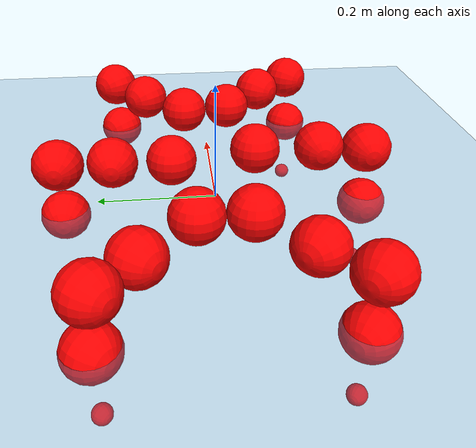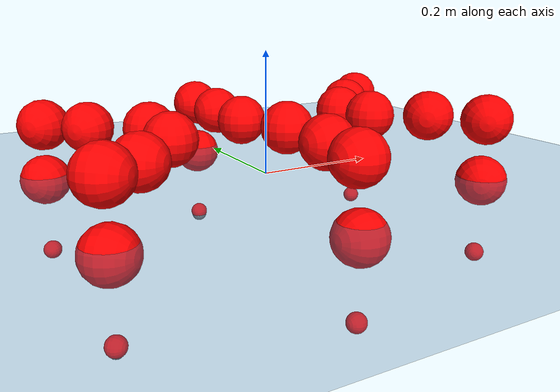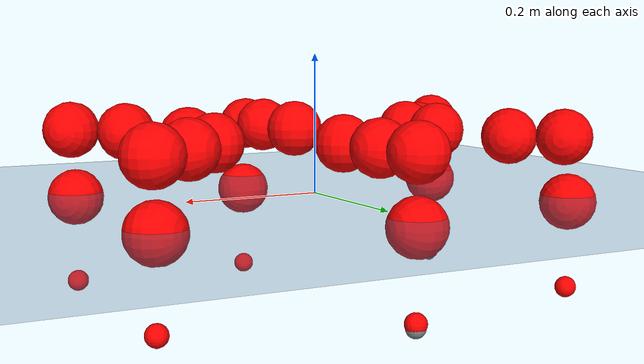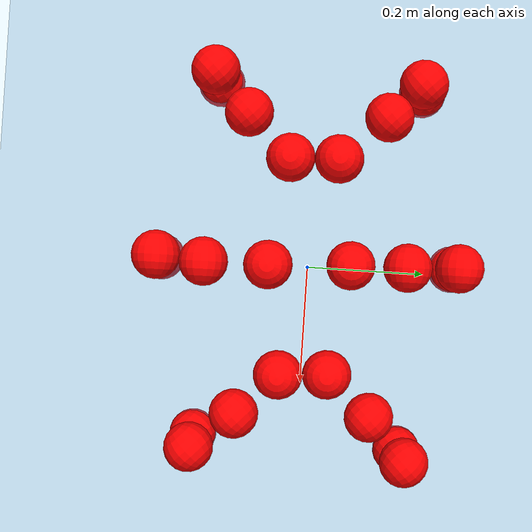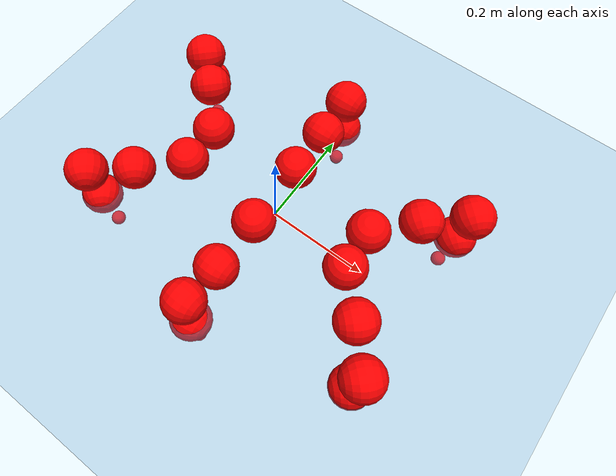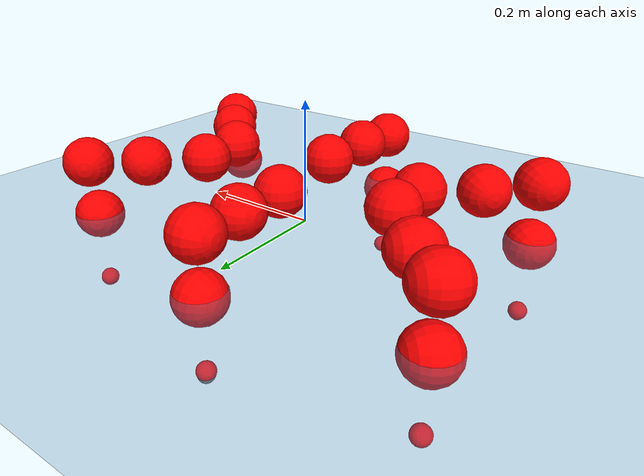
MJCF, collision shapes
<mujoco model="Golem">
  <compiler angle="radian" assetdir="assets" balanceinertia="true" inertiafromgeom="false"/>

  <option timestep="0.005" density="1.2" viscosity="2e-05"/>

  <size nkey="1"/>

  <visual>
    <quality shadowsize="8192"/>
    <map shadowclip="0.5"/>
  </visual>

  <default>
    <default class="/">
      <joint armature="0.01" damping="0.01" frictionloss="0.01"/>
      <geom contype="0" conaffinity="0" group="1" solref="-1000 -80"/>
      <site size="0.01 0.005 0.005" group="5"/>
      <general forcelimited="true" biastype="affine" gainprm="25" biasprm="0 -25 -0.5"/>
      <default class="visual">
        <geom type="mesh" group="2"/>
      </default>
      <default class="collision">
        <geom group="3"/>
      </default>
      <default class="foot">
        <geom size="0.01 0 0" condim="6" group="4" priority="1" solimp="0.015 1 0.01"/>
      </default>
      <default class="reward_collision_sphere">
        <geom group="5" rgba="1 0 0 1"/>
      </default>
    </default>
  </default>

  <asset>
    <texture type="skybox" colorspace="auto" name="//unnamed_texture_0" builtin="gradient" rgb1="0.95 0.95 0.95" rgb2="0.95 0.95 0.95" width="100" height="600"/>
    <texture type="2d" colorspace="auto" name="texplane" builtin="checker" rgb1="0.345 0.575 0.748" rgb2="0.345 0.575 0.748" markrgb="1 1 1" width="512" height="512"/>
    <material name="MatPlane" class="/" texture="texplane" texuniform="true" texrepeat="2 2" specular="0.9"/>
    <mesh name="body" class="/" file="body.stl" scale="0.001 0.001 0.001"/>
    <mesh name="coxa" class="/" file="coxa.stl" scale="0.001 0.001 0.001"/>
    <mesh name="femur" class="/" file="femur.stl" scale="0.001 0.001 0.001"/>
    <mesh name="tibia" class="/" file="tibia.stl" scale="0.001 0.001 0.001"/>
    <mesh name="tarsus" class="/" file="tarsus.stl" scale="0.001 0.001 0.001"/>
  </asset>

  <worldbody>
    <geom name="floor" class="/" size="100 100 0.125" type="plane" group="0" material="MatPlane"/>
    <light name="toplight_shadow" class="/" pos="0 0 5" dir="0.0990148 0.0990148 -0.990148" type="directional" ambient="0.04 0.04 0.04" diffuse="0.55 0.55 0.55" specular="0.12 0.12 0.12"/>
    <light name="toplight_fill" class="/" pos="0 0 5" dir="0.0990148 0.0990148 -0.990148" type="directional" castshadow="false" ambient="0.04 0.04 0.04" diffuse="0.3 0.3 0.3" specular="0.08 0.08 0.08"/>
    <body name="trunk" pos="0.00157543 0.00203495 0.00840957" quat="1 9.46632e-05 -0.000421488 -0.000398969">
      <inertial pos="-0.00189989 -0.000707619 -0.00776213" quat="0.99975 -0.00402896 0.0163099 -0.0147269" mass="3.7848" diaginertia="0.0241315 0.0026615 0.0185075"/>
      <joint name="//unnamed_joint_0" type="free"/>
      <geom name="//unnamed_geom_1" class="/" pos="0 0 0.0721593" quat="1 0 0 0" type="mesh" rgba="0.9 0.9 0.9 1" mesh="body"/>
      <site name="imu" class="/" pos="0.161165 -0.0100724 0.115458" size="0.0102038"/>
      <camera name="track" class="/" pos="0 -1.54473 0" quat="0.707107 0.707107 0 0" mode="trackcom"/>
      <camera name="ego_camera" class="/" pos="0.150966 0 0.112749" quat="-0.5 -0.5 0.5 0.5"/>
      <body name="coxa_RR" pos="-0.205041 -0.0655333 0.0769396" quat="0.382086 0.00012888 -0.000346779 -0.924127">
        <inertial pos="-0.000522904 0.00815517 0.00194949" quat="0.99998 -0.000645422 0.00555425 0.00306708" mass="0.238755" diaginertia="0.024907 0.00282694 0.0204536"/>
        <joint name="coxa_joint_RR" class="/" pos="0 0 0" axis="0.0301288 -0.0390871 -0.998781" range="-3.13714 3.21688" armature="0.0115501" damping="0.022209" frictionloss="0.0111762"/>
        <geom name="//unnamed_geom_2" class="/" type="mesh" rgba="0.2 0.2 0.2 1" mesh="coxa"/>
        <geom name="//unnamed_geom_3" class="reward_collision_sphere" size="0.040815" pos="-0.0348383 0 0"/>
        <body name="femur_RR" pos="0.0676223 0.00153205 -0.00708072" quat="0.500418 -0.499709 0.500104 0.499768">
          <inertial pos="-0.0012184 -0.00261234 0.00243118" quat="0.999993 -0.00232693 0.00266969 0.00122778" mass="0.203667" diaginertia="0.0204707 0.00271608 0.0178891"/>
          <joint name="femur_joint_RR" class="/" pos="0 0 0" axis="0.000647946 0.00251546 -0.999997" stiffness="0.00749428" range="-3.12341 3.28423" armature="0.0121337" damping="0.0271236" frictionloss="0.00800669"/>
          <geom name="//unnamed_geom_4" class="/" type="mesh" rgba="0.9 0.9 0.9 1" mesh="femur"/>
          <geom name="//unnamed_geom_5" class="reward_collision_sphere" size="0.040815"/>
          <body name="tibia_RR" pos="-0.00709215 -0.0875333 -0.00397837" quat="0.000289927 0.999999 -9.82615e-06 -0.00100577">
            <inertial pos="0.00632966 0.00328269 -0.000148502" quat="0.999706 0.0232289 0.00215529 -0.00661295" mass="0.212012" diaginertia="0.0220593 0.00262894 0.0174689"/>
            <joint name="tibia_joint_RR" class="/" pos="0 0 0" axis="-0.0100919 -0.00449141 0.999939" range="-2.98065 3.15514" armature="0.0123534" damping="0.0229948" frictionloss="0.0112292"/>
            <geom name="//unnamed_geom_6" class="/" type="mesh" rgba="0.2 0.2 0.2 1" mesh="tibia"/>
            <geom name="//unnamed_geom_7" class="reward_collision_sphere" size="0.040815"/>
            <body name="tarsus_RR" pos="0.10174 -0.00181354 -0.00063898" quat="1 -0.000266383 7.54924e-05 0.000190018">
              <inertial pos="0.0734164 -0.00697322 0.00442908" quat="0.500746 0.501894 0.498744 0.498609" mass="0.219711" diaginertia="0.0211314 0.00272713 0.0184976"/>
              <joint name="tarsus_joint_RR" class="/" pos="0 0 0" axis="0.000913405 0.0121572 0.999926" stiffness="0.042342" range="-3.09872 3.12606" armature="0.00759316" damping="0.0160072" frictionloss="0.00753087"/>
              <geom name="//unnamed_geom_8" class="/" type="mesh" rgba="0.9 0.9 0.9 1" mesh="tarsus"/>
              <geom name="foot_1" class="foot" size="0.0117014" pos="0.130063 0 0" quat="0 -0.707107 0 0.707107"/>
              <geom name="//unnamed_geom_10" class="reward_collision_sphere" size="0.040815"/>
              <geom name="//unnamed_geom_11" class="reward_collision_sphere" size="0.0153056" pos="0.124837 0 0"/>
              <site name="foot_1" class="foot" pos="0.130063 0 0" quat="0 -0.707107 0 0.707107" size="0.0102038"/>
            </body>
          </body>
        </body>
      </body>
      <body name="coxa_RM" pos="-0.00111581 -0.101812 0.0804489" quat="0.709901 -0.000144704 -0.00199667 -0.704298">
        <inertial pos="0.00651469 -0.00022769 0.00135606" quat="0.999959 0.00573835 0.00541688 0.00444021" mass="0.224131" diaginertia="0.0232941 0.00292841 0.0182196"/>
        <joint name="coxa_joint_RM" class="/" pos="0 0 0" axis="-0.000928556 -0.00120003 -0.999999" stiffness="0.00557002" range="-2.95835 3.12767" armature="0.010068" damping="0" frictionloss="0.00987805"/>
        <geom name="//unnamed_geom_12" class="/" type="mesh" rgba="0.2 0.2 0.2 1" mesh="coxa"/>
        <geom name="//unnamed_geom_13" class="reward_collision_sphere" size="0.040815" pos="-0.0348383 0 0"/>
        <body name="femur_RM" pos="0.0718 0.000319279 -0.00180534" quat="0.497683 -0.499503 0.502442 0.500361">
          <inertial pos="-0.00163173 0.000864689 -0.000851444" quat="0.999456 0.000685372 0.00278514 0.0328446" mass="0.196713" diaginertia="0.0198252 0.00272576 0.0165449"/>
          <joint name="femur_joint_RM" class="/" pos="0 0 0" axis="0.00314814 -0.00998201 -0.999945" stiffness="0.040879" range="-3.17093 3.1248" armature="0.0110971" damping="0.021017" frictionloss="0.0106215"/>
          <geom name="//unnamed_geom_14" class="/" type="mesh" rgba="0.9 0.9 0.9 1" mesh="femur"/>
          <geom name="//unnamed_geom_15" class="reward_collision_sphere" size="0.040815"/>
          <body name="tibia_RM" pos="0.00343986 -0.0793206 -0.00676606" quat="-0.000552046 1 -0.000742506 -7.90583e-05">
            <inertial pos="-0.000343119 -0.0097437 0.00210984" quat="0.999985 -0.00187218 0.00370265 -0.00352228" mass="0.19218" diaginertia="0.019366 0.00247467 0.0158168"/>
            <joint name="tibia_joint_RM" class="/" pos="0 0 0" axis="-0.000846642 0.0146926 0.999892" range="-3.22286 3.33798" armature="0.00894418" damping="0.0434618" frictionloss="0.0112215"/>
            <geom name="//unnamed_geom_16" class="/" type="mesh" rgba="0.2 0.2 0.2 1" mesh="tibia"/>
            <geom name="//unnamed_geom_17" class="reward_collision_sphere" size="0.040815"/>
            <body name="tarsus_RM" pos="0.10795 0.00716013 -0.00237049" quat="0.999997 4.14982e-05 -0.000213013 0.00226389">
              <inertial pos="0.068831 -0.00859584 -0.000328955" quat="0.501011 0.50092 0.500408 0.497653" mass="0.249721" diaginertia="0.0220832 0.00294411 0.0196796"/>
              <joint name="tarsus_joint_RM" class="/" pos="0 0 0" axis="0.0111568 0.00698921 0.999913" range="-3.17004 3.11262" armature="0.0087009" damping="0" frictionloss="0.00988642"/>
              <geom name="//unnamed_geom_18" class="/" type="mesh" rgba="0.9 0.9 0.9 1" mesh="tarsus"/>
              <geom name="foot_2" class="foot" size="0.00994667" pos="0.130063 0 0" quat="0 -0.707107 0 0.707107"/>
              <geom name="//unnamed_geom_20" class="reward_collision_sphere" size="0.040815"/>
              <geom name="//unnamed_geom_21" class="reward_collision_sphere" size="0.0153056" pos="0.124837 0 0"/>
              <site name="foot_2" class="foot" pos="0.130063 0 0" quat="0 -0.707107 0 0.707107" size="0.0102038"/>
            </body>
          </body>
        </body>
      </body>
      <body name="coxa_RF" pos="0.203496 -0.0637839 0.0782895" quat="0.924357 -0.000166205 0.00118329 -0.381527">
        <inertial pos="0.00706444 0.00099343 -0.00568261" quat="0.999906 -0.00701753 0.00260355 -0.0115178" mass="0.186425" diaginertia="0.0193334 0.0027097 0.0167359"/>
        <joint name="coxa_joint_RF" class="/" pos="0 0 0" axis="-0.0139303 -0.00481838 -0.999891" stiffness="0.0029481" range="-3.07953 3.1429" armature="0.0132071" damping="0" frictionloss="0.00849261"/>
        <geom name="//unnamed_geom_22" class="/" type="mesh" rgba="0.2 0.2 0.2 1" mesh="coxa"/>
        <geom name="//unnamed_geom_23" class="reward_collision_sphere" size="0.040815" pos="-0.0348383 0 0"/>
        <body name="femur_RF" pos="0.0610969 -0.000835129 0.00411956" quat="0.499289 -0.502797 0.499515 0.498387">
          <inertial pos="-0.00166297 0.00148686 0.00173864" quat="0.999956 0.00890019 -0.00215277 0.00206401" mass="0.255707" diaginertia="0.0212656 0.00306849 0.0210903"/>
          <joint name="femur_joint_RF" class="/" pos="0 0 0" axis="0.00872894 0.00111093 -0.999961" stiffness="0.0437452" range="-3.15618 3.29513" armature="0.0147309" damping="0.0176213" frictionloss="0.0148293"/>
          <geom name="//unnamed_geom_24" class="/" type="mesh" rgba="0.9 0.9 0.9 1" mesh="femur"/>
          <geom name="//unnamed_geom_25" class="reward_collision_sphere" size="0.040815"/>
          <body name="tibia_RF" pos="0.000622785 -0.0916544 -0.00850743" quat="-0.00029125 1 0.000137716 -0.000266633">
            <inertial pos="0.00728668 -0.000741505 0.000519439" quat="0.99995 0.00971414 0.00163228 -0.00172096" mass="0.227506" diaginertia="0.0235116 0.00287745 0.0189991"/>
            <joint name="tibia_joint_RF" class="/" pos="0 0 0" axis="-0.00750573 0.00901087 0.999931" stiffness="0.00880242" range="-3.20813 3.17299" armature="0.0106376" damping="0.0396734" frictionloss="0.00871449"/>
            <geom name="//unnamed_geom_26" class="/" type="mesh" rgba="0.2 0.2 0.2 1" mesh="tibia"/>
            <geom name="//unnamed_geom_27" class="reward_collision_sphere" size="0.040815"/>
            <body name="tarsus_RF" pos="0.0992811 -0.00104734 0.00709248" quat="0.999998 0.000498113 -0.00213605 -0.00027998">
              <inertial pos="0.0762898 0.00289911 -0.00194889" quat="0.477838 0.508231 0.535154 0.476426" mass="0.220952" diaginertia="0.0217859 0.00266837 0.0206763"/>
              <joint name="tarsus_joint_RF" class="/" pos="0 0 0" axis="-0.0125223 -0.000536492 0.999921" stiffness="0.00617839" range="-3.15414 3.1364" armature="0.0142186" damping="0.00889471" frictionloss="0.0134326"/>
              <geom name="//unnamed_geom_28" class="/" type="mesh" rgba="0.9 0.9 0.9 1" mesh="tarsus"/>
              <geom name="foot_3" class="foot" size="0.0101517" pos="0.130063 0 0" quat="0 -0.707107 0 0.707107"/>
              <geom name="//unnamed_geom_30" class="reward_collision_sphere" size="0.040815"/>
              <geom name="//unnamed_geom_31" class="reward_collision_sphere" size="0.0153056" pos="0.124837 0 0"/>
              <site name="foot_3" class="foot" pos="0.130063 0 0" quat="0 -0.707107 0 0.707107" size="0.0102038"/>
            </body>
          </body>
        </body>
      </body>
      <body name="coxa_LR" pos="-0.2075 0.0642127 0.0784417" quat="0.38248 -0.000198345 -8.56614e-05 0.923964">
        <inertial pos="-0.000597543 0.00116819 -0.00160284" quat="0.999172 0.0360145 -0.0163381 0.00960167" mass="0.203638" diaginertia="0.0212132 0.00245134 0.0180648"/>
        <joint name="coxa_joint_LR" class="/" pos="0 0 0" axis="-0.00429561 0.00452264 -0.999981" range="-3.16703 3.10504" armature="0.00719349" damping="0.0218954" frictionloss="0.00995903"/>
        <geom name="//unnamed_geom_32" class="/" type="mesh" rgba="0.2 0.2 0.2 1" mesh="coxa"/>
        <geom name="//unnamed_geom_33" class="reward_collision_sphere" size="0.040815" pos="-0.0348383 0 0"/>
        <body name="femur_LR" pos="0.0732639 -0.00336905 -0.00552611" quat="0.499062 -0.501688 0.500338 0.498906">
          <inertial pos="0.0062127 0.00783065 -0.00779338" quat="1 -1.84078e-06 3.10109e-05 -4.88874e-05" mass="0.186606" diaginertia="0.0199415 0.0024389 0.0177386"/>
          <joint name="femur_joint_LR" class="/" pos="0 0 0" axis="0.0167632 0.0392707 0.999088" stiffness="0.0109258" range="-3.05378 3.23877" armature="0.00513639" damping="0.0254875" frictionloss="0.0133292"/>
          <geom name="//unnamed_geom_34" class="/" type="mesh" rgba="0.9 0.9 0.9 1" mesh="femur"/>
          <geom name="//unnamed_geom_35" class="reward_collision_sphere" size="0.040815"/>
          <body name="tibia_LR" pos="-0.000270371 -0.0786811 0.00309688" quat="0.0011742 0.999999 -0.000374423 -0.000132942">
            <inertial pos="-7.46535e-05 0.00783094 -0.00046973" quat="0.999939 0.0025318 0.00588623 -0.00899481" mass="0.238393" diaginertia="0.0231654 0.0028076 0.021254"/>
            <joint name="tibia_joint_LR" class="/" pos="0 0 0" axis="0.0165973 -0.032416 -0.999337" stiffness="0.0352119" range="-3.1301 3.27932" armature="0.00992943" damping="0.0213572" frictionloss="0.00805343"/>
            <geom name="//unnamed_geom_36" class="/" type="mesh" rgba="0.2 0.2 0.2 1" mesh="tibia"/>
            <geom name="//unnamed_geom_37" class="reward_collision_sphere" size="0.040815"/>
            <body name="tarsus_LR" pos="0.0929732 0.00713132 0.00333379" quat="0.999998 -0.000390882 -0.00185643 -0.000552548">
              <inertial pos="0.0705338 -0.00127071 0.00517572" quat="0.503211 0.492004 0.504767 0.499922" mass="0.223328" diaginertia="0.0217003 0.00265887 0.0185233"/>
              <joint name="tarsus_joint_LR" class="/" pos="0 0 0" axis="0.021205 0.000990401 -0.999775" stiffness="0.0127608" range="-3.03733 3.10618" armature="0.013375" damping="0.026558" frictionloss="0.00922167"/>
              <geom name="//unnamed_geom_38" class="/" type="mesh" rgba="0.9 0.9 0.9 1" mesh="tarsus"/>
              <geom name="foot_4" class="foot" size="0.0103514" pos="0.130063 0 0" quat="0.707107 0 -0.707107 0"/>
              <geom name="//unnamed_geom_40" class="reward_collision_sphere" size="0.040815"/>
              <geom name="//unnamed_geom_41" class="reward_collision_sphere" size="0.0153056" pos="0.124837 0 0"/>
              <site name="foot_4" class="foot" pos="0.130063 0 0" quat="0.707107 0 -0.707107 0" size="0.0102038"/>
            </body>
          </body>
        </body>
      </body>
      <body name="coxa_LM" pos="-0.00824856 0.104874 0.0692432" quat="0.707215 -0.000632671 -0.00037757 0.706998">
        <inertial pos="-0.00342044 -0.000333927 -0.000644847" quat="0.999933 -0.0110639 -0.00322148 0.000924977" mass="0.222951" diaginertia="0.0190764 0.00272967 0.0178435"/>
        <joint name="coxa_joint_LM" class="/" pos="0 0 0" axis="0.0353668 -0.00725671 -0.999348" stiffness="0.00618527" range="-3.17005 2.95948" armature="0.010183" damping="0.0218783" frictionloss="0.00960421"/>
        <geom name="//unnamed_geom_42" class="/" type="mesh" rgba="0.2 0.2 0.2 1" mesh="coxa"/>
        <geom name="//unnamed_geom_43" class="reward_collision_sphere" size="0.040815" pos="-0.0348383 0 0"/>
        <body name="femur_LM" pos="0.0593867 0.00222505 0.00170507" quat="0.498377 -0.502602 0.50006 0.498951">
          <inertial pos="-0.00473946 -0.0017509 0.00413752" quat="0.99997 0.00314016 0.00591084 0.00382829" mass="0.178352" diaginertia="0.0194223 0.00253955 0.0158301"/>
          <joint name="femur_joint_LM" class="/" pos="0 0 0" axis="0.0137865 0.0218105 0.999667" range="-2.98832 3.28819" armature="0.0100694" damping="0" frictionloss="0.00805823"/>
          <geom name="//unnamed_geom_44" class="/" type="mesh" rgba="0.9 0.9 0.9 1" mesh="femur"/>
          <geom name="//unnamed_geom_45" class="reward_collision_sphere" size="0.040815"/>
          <body name="tibia_LM" pos="-0.00198704 -0.0852722 0.00423186" quat="-3.2132e-05 1 3.46863e-05 -7.61726e-05">
            <inertial pos="-0.00413363 -0.00248282 0.00181631" quat="0.999994 0.00211706 0.00268192 7.53057e-05" mass="0.201419" diaginertia="0.0199747 0.00293961 0.0168433"/>
            <joint name="tibia_joint_LM" class="/" pos="0 0 0" axis="-0.0051083 0.0197714 -0.999791" stiffness="0.0487974" range="-3.17545 3.15279" armature="0.0139439" damping="0.0352792" frictionloss="0.00932359"/>
            <geom name="//unnamed_geom_46" class="/" type="mesh" rgba="0.2 0.2 0.2 1" mesh="tibia"/>
            <geom name="//unnamed_geom_47" class="reward_collision_sphere" size="0.040815"/>
            <body name="tarsus_LM" pos="0.0955164 0.0006743 0.00054829" quat="1 -0.000131872 0.00031617 0.000125716">
              <inertial pos="0.0688904 -0.000761384 -0.00566805" quat="0.500324 0.496003 0.495309 0.508257" mass="0.217907" diaginertia="0.0235509 0.00256707 0.0181035"/>
              <joint name="tarsus_joint_LM" class="/" pos="0 0 0" axis="-0.00742717 -0.0139669 -0.999875" stiffness="0.022607" range="-3.13675 3.18375" armature="0.00938657" damping="0" frictionloss="0.0104785"/>
              <geom name="//unnamed_geom_48" class="/" type="mesh" rgba="0.9 0.9 0.9 1" mesh="tarsus"/>
              <geom name="foot_5" class="foot" size="0.0138645" pos="0.130063 0 0" quat="0.707107 0 -0.707107 0"/>
              <geom name="//unnamed_geom_50" class="reward_collision_sphere" size="0.040815"/>
              <geom name="//unnamed_geom_51" class="reward_collision_sphere" size="0.0153056" pos="0.124837 0 0"/>
              <site name="foot_5" class="foot" pos="0.130063 0 0" quat="0.707107 0 -0.707107 0" size="0.0102038"/>
            </body>
          </body>
        </body>
      </body>
      <body name="coxa_LF" pos="0.198375 0.0662464 0.0756185" quat="0.923067 -0.00261148 -0.0019666 0.384624">
        <inertial pos="-0.000230674 0.00113127 -0.0055001" quat="0.999998 0.000902468 -0.00108478 -0.00147131" mass="0.216088" diaginertia="0.0204616 0.00313735 0.0185542"/>
        <joint name="coxa_joint_LF" class="/" pos="0 0 0" axis="-0.0262447 0.0155093 -0.999535" stiffness="0.00471526" range="-3.11193 3.17868" armature="0.0110814" damping="0.0150053" frictionloss="0.0132009"/>
        <geom name="//unnamed_geom_52" class="/" type="mesh" rgba="0.2 0.2 0.2 1" mesh="coxa"/>
        <geom name="//unnamed_geom_53" class="reward_collision_sphere" size="0.040815" pos="-0.0348383 0 0"/>
        <body name="femur_LF" pos="0.0633385 0.0049329 0.000846996" quat="0.499925 -0.500395 0.5001 0.499579">
          <inertial pos="0.000253244 0.00144788 -0.00760652" quat="0.999781 0.00962377 0.0131789 -0.0131247" mass="0.187297" diaginertia="0.0226852 0.00274935 0.0182968"/>
          <joint name="femur_joint_LF" class="/" pos="0 0 0" axis="0.017903 0.0180753 0.999676" range="-3.10117 3.15033" armature="0.00962978" damping="0.0163348" frictionloss="0.00677504"/>
          <geom name="//unnamed_geom_54" class="/" type="mesh" rgba="0.9 0.9 0.9 1" mesh="femur"/>
          <geom name="//unnamed_geom_55" class="reward_collision_sphere" size="0.040815"/>
          <body name="tibia_LF" pos="-0.00104745 -0.0936004 -0.00599205" quat="-0.00407115 0.999991 0.000665034 0.000247057">
            <inertial pos="0.0015306 -0.002769 0.00545747" quat="0.999202 -0.0343089 -0.00819406 0.0187477" mass="0.193806" diaginertia="0.0194083 0.00270704 0.0180517"/>
            <joint name="tibia_joint_LF" class="/" pos="0 0 0" axis="-7.94392e-06 -5.01725e-05 -1" stiffness="0.0305909" range="-3.33407 3.10675" armature="0.00930451" damping="0" frictionloss="0.0102998"/>
            <geom name="//unnamed_geom_56" class="/" type="mesh" rgba="0.2 0.2 0.2 1" mesh="tibia"/>
            <geom name="//unnamed_geom_57" class="reward_collision_sphere" size="0.040815"/>
            <body name="tarsus_LF" pos="0.0935272 -0.0058243 -0.000235195" quat="0.999999 0.000875629 -0.000622379 -0.000134414">
              <inertial pos="0.0782396 0.0006705 0.0012439" quat="0.500845 0.497878 0.502108 0.499159" mass="0.23304" diaginertia="0.0230017 0.00302417 0.0172843"/>
              <joint name="tarsus_joint_LF" class="/" pos="0 0 0" axis="0.0308439 0.0122672 -0.999449" stiffness="0.0278403" range="-3.14785 3.25563" armature="0.00636054" damping="0.00700823" frictionloss="0.00545188"/>
              <geom name="//unnamed_geom_58" class="/" type="mesh" rgba="0.9 0.9 0.9 1" mesh="tarsus"/>
              <geom name="foot_6" class="foot" size="0.0104816" pos="0.130063 0 0" quat="0.707107 0 -0.707107 0"/>
              <geom name="//unnamed_geom_60" class="reward_collision_sphere" size="0.040815"/>
              <geom name="//unnamed_geom_61" class="reward_collision_sphere" size="0.0153056" pos="0.124837 0 0"/>
              <site name="foot_6" class="foot" pos="0.130063 0 0" quat="0.707107 0 -0.707107 0" size="0.0102038"/>
            </body>
          </body>
        </body>
      </body>
    </body>
  </worldbody>

  <contact>
    <pair class="/" geom1="floor" geom2="foot_1" name="//unnamed_contact_0"/>
    <pair class="/" geom1="floor" geom2="foot_2" name="//unnamed_contact_1"/>
    <pair class="/" geom1="floor" geom2="foot_3" name="//unnamed_contact_2"/>
    <pair class="/" geom1="floor" geom2="foot_4" name="//unnamed_contact_3"/>
    <pair class="/" geom1="floor" geom2="foot_5" name="//unnamed_contact_4"/>
    <pair class="/" geom1="floor" geom2="foot_6" name="//unnamed_contact_5"/>
  </contact>

  <actuator>
    <general name="coxa_joint_RR" class="/" joint="coxa_joint_RR" forcerange="-6.49219 6.49219" gainprm="25.4128" biasprm="0 -25.4128 -0.519497"/>
    <general name="femur_joint_RR" class="/" joint="femur_joint_RR" forcerange="-6.11936 6.11936" gainprm="25.4128" biasprm="0 -25.4128 -0.519497"/>
    <general name="tibia_joint_RR" class="/" joint="tibia_joint_RR" forcerange="-8.88315 8.88315" gainprm="25.4128" biasprm="0 -25.4128 -0.519497"/>
    <general name="tarsus_joint_RR" class="/" joint="tarsus_joint_RR" forcerange="-9.08451 9.08451" gainprm="25.4128" biasprm="0 -25.4128 -0.519497"/>
    <general name="coxa_joint_RM" class="/" joint="coxa_joint_RM" forcerange="-9.55982 9.55982" gainprm="25.4128" biasprm="0 -25.4128 -0.519497"/>
    <general name="femur_joint_RM" class="/" joint="femur_joint_RM" forcerange="-7.85089 7.85089" gainprm="25.4128" biasprm="0 -25.4128 -0.519497"/>
    <general name="tibia_joint_RM" class="/" joint="tibia_joint_RM" forcerange="-7.11384 7.11384" gainprm="25.4128" biasprm="0 -25.4128 -0.519497"/>
    <general name="tarsus_joint_RM" class="/" joint="tarsus_joint_RM" forcerange="-6.89756 6.89756" gainprm="25.4128" biasprm="0 -25.4128 -0.519497"/>
    <general name="coxa_joint_RF" class="/" joint="coxa_joint_RF" forcerange="-8.00648 8.00648" gainprm="25.4128" biasprm="0 -25.4128 -0.519497"/>
    <general name="femur_joint_RF" class="/" joint="femur_joint_RF" forcerange="-4.77367 4.77367" gainprm="25.4128" biasprm="0 -25.4128 -0.519497"/>
    <general name="tibia_joint_RF" class="/" joint="tibia_joint_RF" forcerange="-5.2503 5.2503" gainprm="25.4128" biasprm="0 -25.4128 -0.519497"/>
    <general name="tarsus_joint_RF" class="/" joint="tarsus_joint_RF" forcerange="-5.46602 5.46602" gainprm="25.4128" biasprm="0 -25.4128 -0.519497"/>
    <general name="coxa_joint_LR" class="/" joint="coxa_joint_LR" forcerange="-7.33968 7.33968" gainprm="25.4128" biasprm="0 -25.4128 -0.519497"/>
    <general name="femur_joint_LR" class="/" joint="femur_joint_LR" forcerange="-7.81618 7.81618" gainprm="25.4128" biasprm="0 -25.4128 -0.519497"/>
    <general name="tibia_joint_LR" class="/" joint="tibia_joint_LR" forcerange="-4.88824 4.88824" gainprm="25.4128" biasprm="0 -25.4128 -0.519497"/>
    <general name="tarsus_joint_LR" class="/" joint="tarsus_joint_LR" forcerange="-5.25137 5.25137" gainprm="25.4128" biasprm="0 -25.4128 -0.519497"/>
    <general name="coxa_joint_LM" class="/" joint="coxa_joint_LM" forcerange="-8.00731 8.00731" gainprm="25.4128" biasprm="0 -25.4128 -0.519497"/>
    <general name="femur_joint_LM" class="/" joint="femur_joint_LM" forcerange="-6.90436 6.90436" gainprm="25.4128" biasprm="0 -25.4128 -0.519497"/>
    <general name="tibia_joint_LM" class="/" joint="tibia_joint_LM" forcerange="-7.34782 7.34782" gainprm="25.4128" biasprm="0 -25.4128 -0.519497"/>
    <general name="tarsus_joint_LM" class="/" joint="tarsus_joint_LM" forcerange="-7.70134 7.70134" gainprm="25.4128" biasprm="0 -25.4128 -0.519497"/>
    <general name="coxa_joint_LF" class="/" joint="coxa_joint_LF" forcerange="-7.43862 7.43862" gainprm="25.4128" biasprm="0 -25.4128 -0.519497"/>
    <general name="femur_joint_LF" class="/" joint="femur_joint_LF" forcerange="-5.54763 5.54763" gainprm="25.4128" biasprm="0 -25.4128 -0.519497"/>
    <general name="tibia_joint_LF" class="/" joint="tibia_joint_LF" forcerange="-5.74947 5.74947" gainprm="25.4128" biasprm="0 -25.4128 -0.519497"/>
    <general name="tarsus_joint_LF" class="/" joint="tarsus_joint_LF" forcerange="-7.99553 7.99553" gainprm="25.4128" biasprm="0 -25.4128 -0.519497"/>
  </actuator>

  <sensor>
    <gyro site="imu" name="imu_angular_velocity"/>
    <velocimeter site="imu" name="imu_linear_velocity"/>
    <framelinvel objtype="site" objname="foot_1" name="foot_1_global_linear_velocity"/>
    <framelinvel objtype="site" objname="foot_2" name="foot_2_global_linear_velocity"/>
    <framelinvel objtype="site" objname="foot_3" name="foot_3_global_linear_velocity"/>
    <framelinvel objtype="site" objname="foot_4" name="foot_4_global_linear_velocity"/>
    <framelinvel objtype="site" objname="foot_5" name="foot_5_global_linear_velocity"/>
    <framelinvel objtype="site" objname="foot_6" name="foot_6_global_linear_velocity"/>
  </sensor>

  <keyframe>
    <key name="home" qpos="0 0 0.1457 1 0 0 0 0 0 0 0 0 0 0 0 0 0 0 0 0 0 0 0 0 0 0 0 0 0 0 0"/>
  </keyframe>
</mujoco>
